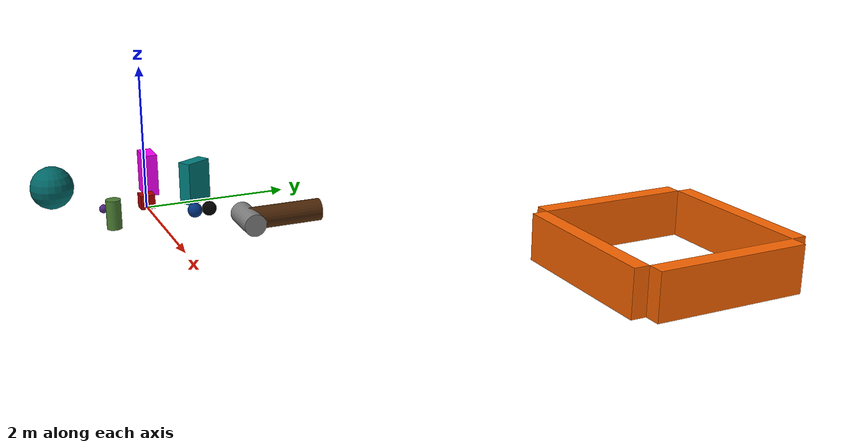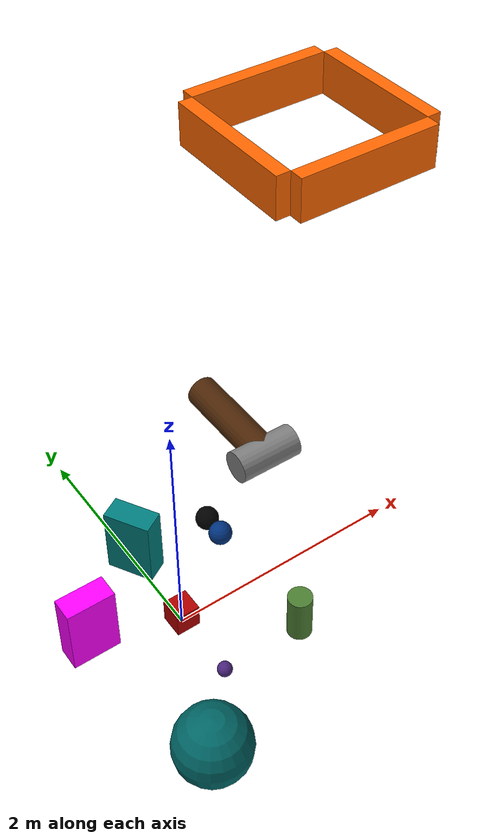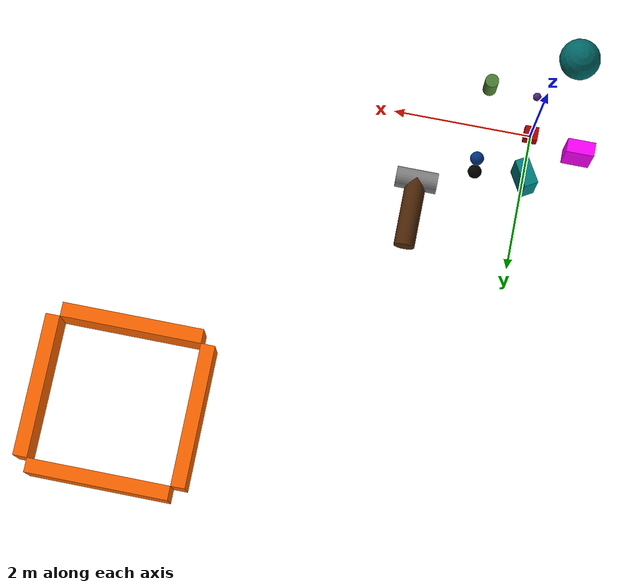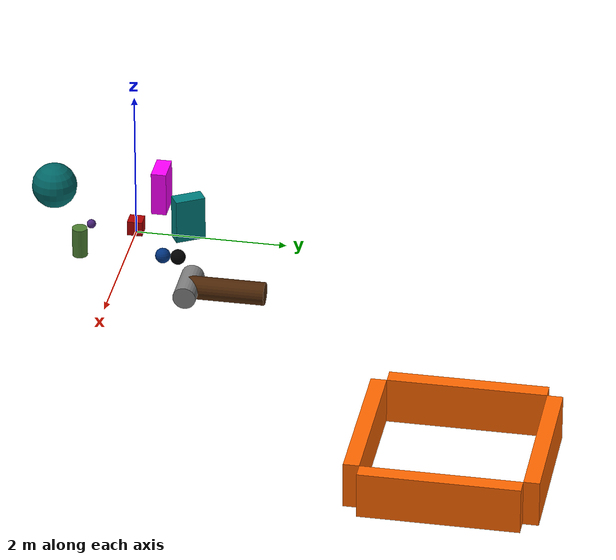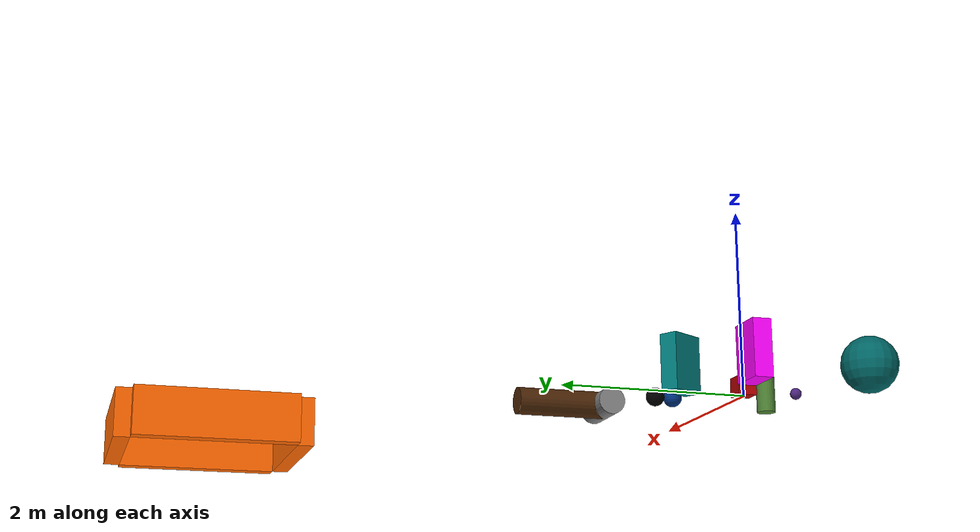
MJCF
<mujoco>
    <asset>
        <texture name="texsponge" type="2d" file="sponge.png"/>
        <material name="matsponge" texture="texsponge" specular="0.3"/>
    </asset>

    <option solver="CG" tolerance="1e-6"/>

    <size nconmax="500" njmax="5000" nstack="5000000"/>

    <worldbody>
        <body name="red_box" pos="0 0 0.1" euler="0 0 0">
            <joint type = "free"/>
            <inertial pos=".1 .1 .1" mass="10" diaginertia="0.01 0.01 0.01"/>
            <geom type="box" size=".1 .1 .1" rgba="0.7 0 0 1"/>
        </body>

        <body name="blue_ball" pos="0.7 0.5 0.1" euler="0 0 0">
            <joint type = "free"/>
            <geom type="sphere" size=".1" rgba="0 0.2 0.5 1"/>
            <geom type="sphere" size=".1" rgba="0 0 0 1" pos="0 .2 0"/>
        </body>

        <body name="pink_box" pos="-0.7 0.2 .3" euler="0 0 90">
            <joint type = "free"/>
            <geom type="box" size=".1 .2 .3" rgba="1 0 1 1"/>
        </body>

        <body name="big_ball" pos="-0.5 -1.2 .3" euler="0 0 0">
            <joint type = "free"/>
            <geom type="sphere" size=".3" rgba="0 .4 .4 1"/>
        </body>

        <body name="blue_box" pos="0 .7 .3" euler="0 0 30">
            <joint type = "free"/>
            <geom type="box" size=".1 .2 .3" rgba="0 .5 .5 1"/>
        </body>

        <body name="purple_ball" pos="0 -.6 .06" euler="0 0 0">
            <joint type = "free"/>
            <geom type="sphere" size=".06" rgba=".3 .15 .5 1"/>
        </body>

        <body name="cylinder" pos=".7 -.6 .2" euler="0 0 0">
            <joint type = "free"/>
            <geom type="cylinder" size=".1 .2" rgba=".3 .5 .2 1"/>
        </body>

        <body name="hammer" pos="1.5 1.5 0.15" euler="90 0 0">
            <joint type = "free"/>
            <geom type="cylinder" size="0.15 0.5" rgba="0.3 0.15 0.03 1"/>
            <geom type="cylinder" size="0.15 0.3" rgba="0.5 0.5 0.5 1" pos="0 0 0.5" euler="0 90 0"/>
        </body>

        <body name="container" pos="5 5 .3">
            <joint type = "free"/>
            <geom type="box" size="1 .1 .3" rgba="1 0.4 0 1" pos="0 1.1 0"/>
            <geom type="box" size=".1 1 .3" rgba="1 0.4 0 1" pos="1.1 0 0"/>
            <geom type="box" size=".1 1 .3" rgba="1 0.4 0 1" pos="-1.1 0 0"/>
            <geom type="box" size="1 .1 .3" rgba="1 0.4 0 1" pos="0 -1.1 0"/>
        </body>

    </worldbody>
</mujoco>
